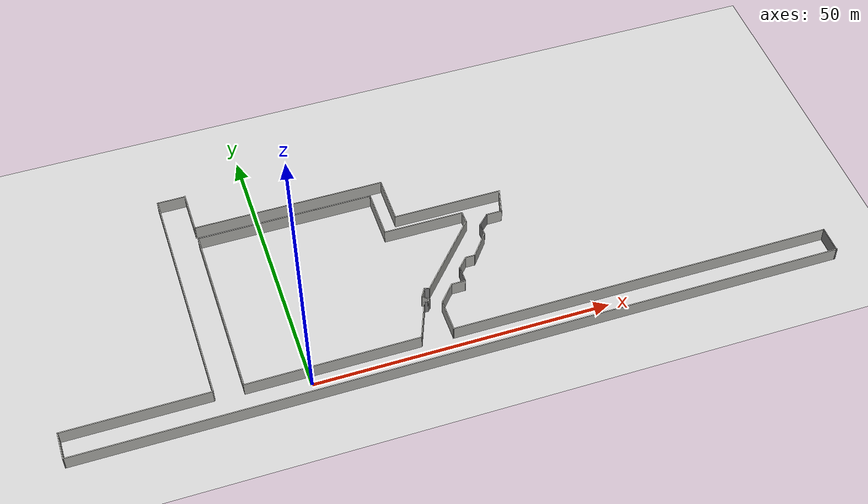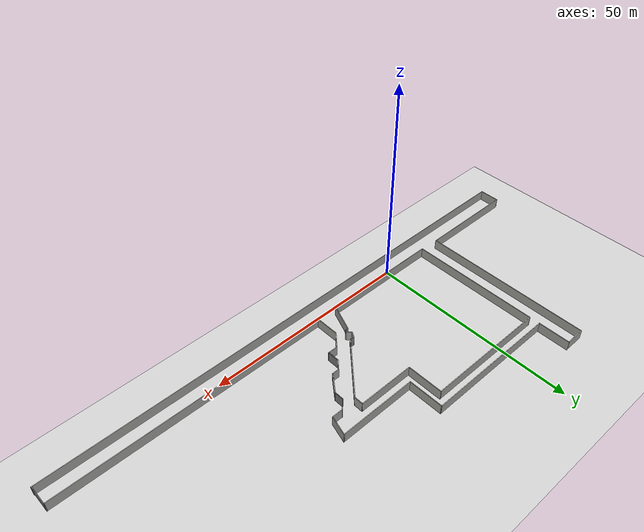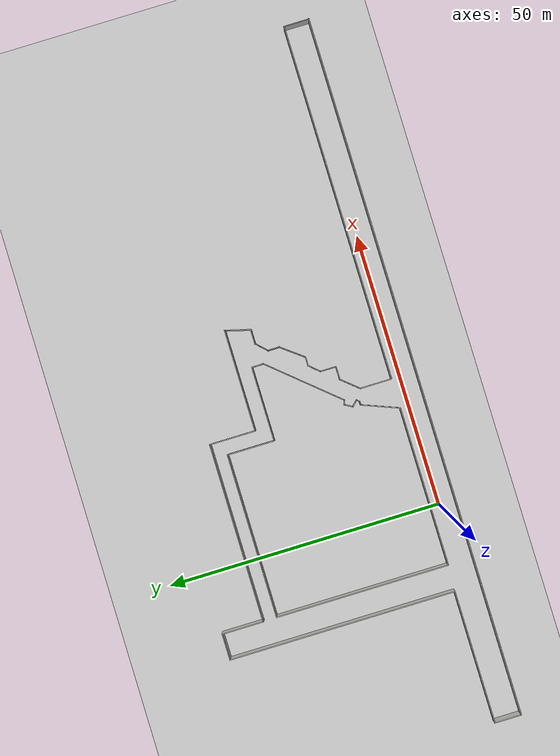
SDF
<?xml version="1.0"?>
<sdf version="1.4">
<world name="mit_tunnel">

  <include>
    <uri>model://sun</uri>
  </include>

  <gui>
    <camera name='main'>
      <pose>0 0 10 0 1.571 0</pose>
    </camera>
  </gui>

  <model name="ground_plane">
    <static>true</static>
    <link name="link">
      <collision name="collision">
        <geometry>
          <plane>
            <normal>0 0 1</normal>
            <size>150 150</size>
          </plane>
        </geometry>
        <surface>
          <friction>
            <ode>
              <mu>100</mu>
              <mu2>50</mu2>
            </ode>
          </friction>
        </surface>
      </collision>
      <visual name="visual">
        <cast_shadows>false</cast_shadows>
        <geometry>
          <plane>
            <normal>0 0 1</normal>
            <size>150 150</size>
          </plane>
        </geometry>
        <material>
          <script>
            <uri>file://media/materials/scripts/gazebo.material</uri>
            <name>Gazebo/Grey</name>
          </script>
        </material>
      </visual>
    </link>
  </model>

  <include>
    <uri>model://mit_tunnel</uri>
    <pose>25 20.2 0 0 0 0</pose>
  </include>

</world>
</sdf>

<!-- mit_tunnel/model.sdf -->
<sdf version='1.4'>
  <model name='mit_tunnel'>
    <pose frame=''>3.61177 6.74312 0 0 -0 0</pose>
    <link name='Wall_10'>
      <collision name='Wall_10_Collision'>
        <geometry>
          <box>
            <size>32.6917 0.15 2.5</size>
          </box>
        </geometry>
        <pose frame=''>0 0 1.25 0 -0 0</pose>
      </collision>
      <visual name='Wall_10_Visual'>
        <pose frame=''>0 0 1.25 0 -0 0</pose>
        <geometry>
          <box>
            <size>32.6917 0.15 2.5</size>
          </box>
        </geometry>
        <material>
          <script>
            <uri>file://media/materials/scripts/gazebo.material</uri>
            <name>Gazebo/CeilingTiled</name>
          </script>
          <ambient>1 1 1 1</ambient>
        </material>
      </visual>
      <pose frame=''>-19.1952 15.5558 0 0 0 -0.001042</pose>
    </link>
    <link name='Wall_12'>
      <collision name='Wall_12_Collision'>
        <geometry>
          <box>
            <size>8.5 0.15 2.5</size>
          </box>
        </geometry>
        <pose frame=''>0 0 1.25 0 -0 0</pose>
      </collision>
      <visual name='Wall_12_Visual'>
        <pose frame=''>0 0 1.25 0 -0 0</pose>
        <geometry>
          <box>
            <size>8.5 0.15 2.5</size>
          </box>
        </geometry>
        <material>
          <script>
            <uri>file://media/materials/scripts/gazebo.material</uri>
            <name>Gazebo/CeilingTiled</name>
          </script>
          <ambient>1 1 1 1</ambient>
        </material>
      </visual>
      <pose frame=''>-2.92483 11.3639 0 0 0 -1.5708</pose>
    </link>
    <link name='Wall_15'>
      <collision name='Wall_15_Collision'>
        <geometry>
          <box>
            <size>18.75 0.15 2.5</size>
          </box>
        </geometry>
        <pose frame=''>0 0 1.25 0 -0 0</pose>
      </collision>
      <visual name='Wall_15_Visual'>
        <pose frame=''>0 0 1.25 0 -0 0</pose>
        <geometry>
          <box>
            <size>18.75 0.15 2.5</size>
          </box>
        </geometry>
        <material>
          <script>
            <uri>file://media/materials/scripts/gazebo.material</uri>
            <name>Gazebo/CeilingTiled</name>
          </script>
          <ambient>1 1 1 1</ambient>
        </material>
      </visual>
      <pose frame=''>6.37517 7.18889 0 0 -0 0</pose>
    </link>
    <link name='Wall_17'>
      <collision name='Wall_17_Collision'>
        <geometry>
          <box>
            <size>4.75 0.15 2.5</size>
          </box>
        </geometry>
        <pose frame=''>0 0 1.25 0 -0 0</pose>
      </collision>
      <visual name='Wall_17_Visual'>
        <pose frame=''>0 0 1.25 0 -0 0</pose>
        <geometry>
          <box>
            <size>4.75 0.15 2.5</size>
          </box>
        </geometry>
        <material>
          <script>
            <uri>file://media/materials/scripts/gazebo.material</uri>
            <name>Gazebo/CeilingTiled</name>
          </script>
          <ambient>1 1 1 1</ambient>
        </material>
      </visual>
      <pose frame=''>15.0799 4.96726 0 0 0 -1.8326</pose>
    </link>
    <link name='Wall_18'>
      <collision name='Wall_18_Collision'>
        <geometry>
          <box>
            <size>2.75 0.15 2.5</size>
          </box>
        </geometry>
        <pose frame=''>0 0 1.25 0 -0 0</pose>
      </collision>
      <visual name='Wall_18_Visual'>
        <pose frame=''>0 0 1.25 0 -0 0</pose>
        <geometry>
          <box>
            <size>2.75 0.15 2.5</size>
          </box>
        </geometry>
        <material>
          <script>
            <uri>file://media/materials/scripts/gazebo.material</uri>
            <name>Gazebo/CeilingTiled</name>
          </script>
          <ambient>1 1 1 1</ambient>
        </material>
      </visual>
      <pose frame=''>13.1846 2.74563 0 0 -0 3.14159</pose>
    </link>
    <link name='Wall_19'>
      <collision name='Wall_19_Collision'>
        <geometry>
          <box>
            <size>2.75 0.15 2.5</size>
          </box>
        </geometry>
        <pose frame=''>0 0 1.25 0 -0 0</pose>
      </collision>
      <visual name='Wall_19_Visual'>
        <pose frame=''>0 0 1.25 0 -0 0</pose>
        <geometry>
          <box>
            <size>2.75 0.15 2.5</size>
          </box>
        </geometry>
        <material>
          <script>
            <uri>file://media/materials/scripts/gazebo.material</uri>
            <name>Gazebo/Grey</name>
          </script>
          <ambient>1 1 1 1</ambient>
        </material>
      </visual>
      <pose frame=''>10.9654 1.82639 0 0 0 -2.35619</pose>
    </link>
    <link name='Wall_2'>
      <collision name='Wall_2_Collision'>
        <geometry>
          <box>
            <size>24.25 0.15 2.5</size>
          </box>
        </geometry>
        <pose frame=''>0 0 1.25 0 -0 0</pose>
      </collision>
      <visual name='Wall_2_Visual'>
        <pose frame=''>0 0 1.25 0 -0 0</pose>
        <geometry>
          <box>
            <size>24.25 0.15 2.5</size>
          </box>
        </geometry>
        <material>
          <script>
            <uri>file://media/materials/scripts/gazebo.material</uri>
            <name>Gazebo/CeilingTiled</name>
          </script>
          <ambient>1 1 1 1</ambient>
        </material>
      </visual>
      <pose frame=''>-52.25 -18.2689 0 0 -0 0</pose>
    </link>
    <link name='Wall_20'>
      <collision name='Wall_20_Collision'>
        <geometry>
          <box>
            <size>2.25 0.15 2.5</size>
          </box>
        </geometry>
        <pose frame=''>0 0 1.25 0 -0 0</pose>
      </collision>
      <visual name='Wall_20_Visual'>
        <pose frame=''>0 0 1.25 0 -0 0</pose>
        <geometry>
          <box>
            <size>2.25 0.15 2.5</size>
          </box>
        </geometry>
        <material>
          <script>
            <uri>file://media/materials/scripts/gazebo.material</uri>
            <name>Gazebo/Grey</name>
          </script>
          <ambient>1 1 1 1</ambient>
        </material>
      </visual>
      <pose frame=''>10.0461 -0.142849 0 0 0 -1.5708</pose>
    </link>
    <link name='Wall_22'>
      <collision name='Wall_22_Collision'>
        <geometry>
          <box>
            <size>5.08891 0.15 2.5</size>
          </box>
        </geometry>
        <pose frame=''>0 0 1.25 0 -0 0</pose>
      </collision>
      <visual name='Wall_22_Visual'>
        <pose frame=''>0 0 1.25 0 -0 0</pose>
        <geometry>
          <box>
            <size>5.08891 0.15 2.5</size>
          </box>
        </geometry>
        <material>
          <script>
            <uri>file://media/materials/scripts/gazebo.material</uri>
            <name>Gazebo/CeilingTiled</name>
          </script>
          <ambient>1 1 1 1</ambient>
        </material>
      </visual>
      <pose frame=''>8.53852 -3.14869 0 0 0 -2.22749</pose>
    </link>
    <link name='Wall_23'>
      <collision name='Wall_23_Collision'>
        <geometry>
          <box>
            <size>1.75 0.15 2.5</size>
          </box>
        </geometry>
        <pose frame=''>0 0 1.25 0 -0 0</pose>
      </collision>
      <visual name='Wall_23_Visual'>
        <pose frame=''>0 0 1.25 0 -0 0</pose>
        <geometry>
          <box>
            <size>1.75 0.15 2.5</size>
          </box>
        </geometry>
        <material>
          <script>
            <uri>file://media/materials/scripts/gazebo.material</uri>
            <name>Gazebo/CeilingTiled</name>
          </script>
          <ambient>1 1 1 1</ambient>
        </material>
      </visual>
      <pose frame=''>6.23091 -5.10454 0 0 -0 3.14159</pose>
    </link>
    <link name='Wall_24'>
      <collision name='Wall_24_Collision'>
        <geometry>
          <box>
            <size>2.59216 0.15 2.5</size>
          </box>
        </geometry>
        <pose frame=''>0 0 1.25 0 -0 0</pose>
      </collision>
      <visual name='Wall_24_Visual'>
        <pose frame=''>0 0 1.25 0 -0 0</pose>
        <geometry>
          <box>
            <size>2.59216 0.15 2.5</size>
          </box>
        </geometry>
        <material>
          <script>
            <uri>file://media/materials/scripts/gazebo.material</uri>
            <name>Gazebo/CeilingTiled</name>
          </script>
          <ambient>1 1 1 1</ambient>
        </material>
      </visual>
      <pose frame=''>4.6163 -6.01417 0 0 0 -2.30114</pose>
    </link>
    <link name='Wall_26'>
      <collision name='Wall_26_Collision'>
        <geometry>
          <box>
            <size>3 0.15 2.5</size>
          </box>
        </geometry>
        <pose frame=''>0 0 1.25 0 -0 0</pose>
      </collision>
      <visual name='Wall_26_Visual'>
        <pose frame=''>0 0 1.25 0 -0 0</pose>
        <geometry>
          <box>
            <size>3 0.15 2.5</size>
          </box>
        </geometry>
        <material>
          <script>
            <uri>file://media/materials/scripts/gazebo.material</uri>
            <name>Gazebo/Grey</name>
          </script>
          <ambient>1 1 1 1</ambient>
        </material>
      </visual>
      <pose frame=''>3.80168 -8.34882 0 0 0 -1.5708</pose>
    </link>
    <link name='Wall_27'>
      <collision name='Wall_27_Collision'>
        <geometry>
          <box>
            <size>2.5 0.15 2.5</size>
          </box>
        </geometry>
        <pose frame=''>0 0 1.25 0 -0 0</pose>
      </collision>
      <visual name='Wall_27_Visual'>
        <pose frame=''>0 0 1.25 0 -0 0</pose>
        <geometry>
          <box>
            <size>2.5 0.15 2.5</size>
          </box>
        </geometry>
        <material>
          <script>
            <uri>file://media/materials/scripts/gazebo.material</uri>
            <name>Gazebo/CeilingTiled</name>
          </script>
          <ambient>1 1 1 1</ambient>
        </material>
      </visual>
      <pose frame=''>2.62668 -9.77382 0 0 -0 3.14159</pose>
    </link>
    <link name='Wall_28'>
      <collision name='Wall_28_Collision'>
        <geometry>
          <box>
            <size>4.15096 0.15 2.5</size>
          </box>
        </geometry>
        <pose frame=''>0 0 1.25 0 -0 0</pose>
      </collision>
      <visual name='Wall_28_Visual'>
        <pose frame=''>0 0 1.25 0 -0 0</pose>
        <geometry>
          <box>
            <size>4.15096 0.15 2.5</size>
          </box>
        </geometry>
        <material>
          <script>
            <uri>file://media/materials/scripts/gazebo.material</uri>
            <name>Gazebo/CeilingTiled</name>
          </script>
          <ambient>1 1 1 1</ambient>
        </material>
      </visual>
      <pose frame=''>0.152007 -11.2946 0 0 0 -2.27796</pose>
    </link>
    <link name='Wall_29'>
      <collision name='Wall_29_Collision'>
        <geometry>
          <box>
            <size>5.87777 0.15 2.5</size>
          </box>
        </geometry>
        <pose frame=''>0 0 1.25 0 -0 0</pose>
      </collision>
      <visual name='Wall_29_Visual'>
        <pose frame=''>0 0 1.25 0 -0 0</pose>
        <geometry>
          <box>
            <size>5.87777 0.15 2.5</size>
          </box>
        </geometry>
        <material>
          <script>
            <uri>file://media/materials/scripts/gazebo.material</uri>
            <name>Gazebo/CeilingTiled</name>
          </script>
          <ambient>1 1 1 1</ambient>
        </material>
      </visual>
      <pose frame=''>-1.14312 -15.679 0 0 0 -1.56921</pose>
    </link>
    <link name='Wall_30'>
      <collision name='Wall_30_Collision'>
        <geometry>
          <box>
            <size>65.5 0.15 2.5</size>
          </box>
        </geometry>
        <pose frame=''>0 0 1.25 0 -0 0</pose>
      </collision>
      <visual name='Wall_30_Visual'>
        <pose frame=''>0 0 1.25 0 -0 0</pose>
        <geometry>
          <box>
            <size>65.5 0.15 2.5</size>
          </box>
        </geometry>
        <material>
          <script>
            <uri>file://media/materials/scripts/gazebo.material</uri>
            <name>Gazebo/CeilingTiled</name>
          </script>
          <ambient>1 1 1 1</ambient>
        </material>
      </visual>
      <pose frame=''>31.5103 -18.5427 0 0 -0 0</pose>
    </link>
    <link name='Wall_32'>
      <collision name='Wall_32_Collision'>
        <geometry>
          <box>
            <size>4.75 0.15 2.5</size>
          </box>
        </geometry>
        <pose frame=''>0 0 1.25 0 -0 0</pose>
      </collision>
      <visual name='Wall_32_Visual'>
        <pose frame=''>0 0 1.25 0 -0 0</pose>
        <geometry>
          <box>
            <size>4.75 0.15 2.5</size>
          </box>
        </geometry>
        <material>
          <script>
            <uri>file://media/materials/scripts/gazebo.material</uri>
            <name>Gazebo/Grey</name>
          </script>
          <ambient>1 1 1 1</ambient>
        </material>
      </visual>
      <pose frame=''>64.1853 -20.8427 0 0 0 -1.5708</pose>
    </link>
    <link name='Wall_34'>
      <collision name='Wall_34_Collision'>
        <geometry>
          <box>
            <size>5 0.15 2.5</size>
          </box>
        </geometry>
        <pose frame=''>0 0 1.25 0 -0 0</pose>
      </collision>
      <visual name='Wall_34_Visual'>
        <pose frame=''>0 0 1.25 0 -0 0</pose>
        <geometry>
          <box>
            <size>5 0.15 2.5</size>
          </box>
        </geometry>
        <material>
          <script>
            <uri>file://media/materials/scripts/gazebo.material</uri>
            <name>Gazebo/CeilingTiled</name>
          </script>
          <ambient>1 1 1 1</ambient>
        </material>
      </visual>
      <pose frame=''>-64.3 -20.6939 0 0 0 -1.5708</pose>
    </link>
    <link name='Wall_35'>
      <collision name='Wall_35_Collision'>
        <geometry>
          <box>
            <size>128.75 0.15 2.5</size>
          </box>
        </geometry>
        <pose frame=''>0 0 1.25 0 -0 0</pose>
      </collision>
      <visual name='Wall_35_Visual'>
        <pose frame=''>0 0 1.25 0 -0 0</pose>
        <geometry>
          <box>
            <size>128.75 0.15 2.5</size>
          </box>
        </geometry>
        <material>
          <script>
            <uri>file://media/materials/scripts/gazebo.material</uri>
            <name>Gazebo/CeilingTiled</name>
          </script>
          <ambient>1 1 1 1</ambient>
        </material>
      </visual>
      <pose frame=''>1e-06 -23.1189 0 0 -0 0</pose>
    </link>
    <link name='Wall_37'>
      <collision name='Wall_37_Collision'>
        <geometry>
          <box>
            <size>4.75 0.15 2.5</size>
          </box>
        </geometry>
        <pose frame=''>0 0 1.25 0 -0 0</pose>
      </collision>
      <visual name='Wall_37_Visual'>
        <pose frame=''>0 0 1.25 0 -0 0</pose>
        <geometry>
          <box>
            <size>4.75 0.15 2.5</size>
          </box>
        </geometry>
        <material>
          <script>
            <uri>file://media/materials/scripts/gazebo.material</uri>
            <name>Gazebo/CeilingTiled</name>
          </script>
          <ambient>1 1 1 1</ambient>
        </material>
      </visual>
      <pose frame=''>-37.9 23.0811 0 0 -0 0</pose>
    </link>
    <link name='Wall_41'>
      <collision name='Wall_41_Collision'>
        <geometry>
          <box>
            <size>31.75 0.15 2.5</size>
          </box>
        </geometry>
        <pose frame=''>0 0 1.25 0 -0 0</pose>
      </collision>
      <visual name='Wall_41_Visual'>
        <pose frame=''>0 0 1.25 0 -0 0</pose>
        <geometry>
          <box>
            <size>31.75 0.15 2.5</size>
          </box>
        </geometry>
        <material>
          <script>
            <uri>file://media/materials/scripts/gazebo.material</uri>
            <name>Gazebo/CeilingTiled</name>
          </script>
          <ambient>1 1 1 1</ambient>
        </material>
      </visual>
      <pose frame=''>-35.4175 -2.72616 0 0 -0 1.5708</pose>
    </link>
    <link name='Wall_43'>
      <collision name='Wall_43_Collision'>
        <geometry>
          <box>
            <size>30 0.15 2.5</size>
          </box>
        </geometry>
        <pose frame=''>0 0 1.25 0 -0 0</pose>
      </collision>
      <visual name='Wall_43_Visual'>
        <pose frame=''>0 0 1.25 0 -0 0</pose>
        <geometry>
          <box>
            <size>30 0.15 2.5</size>
          </box>
        </geometry>
        <material>
          <script>
            <uri>file://media/materials/scripts/gazebo.material</uri>
            <name>Gazebo/CeilingTiled</name>
          </script>
          <ambient>1 1 1 1</ambient>
        </material>
      </visual>
      <pose frame=''>-20.4925 13.0738 0 0 -0 0</pose>
    </link>
    <link name='Wall_44'>
      <collision name='Wall_44_Collision'>
        <geometry>
          <box>
            <size>8.75 0.15 2.5</size>
          </box>
        </geometry>
        <pose frame=''>0 0 1.25 0 -0 0</pose>
      </collision>
      <visual name='Wall_44_Visual'>
        <pose frame=''>0 0 1.25 0 -0 0</pose>
        <geometry>
          <box>
            <size>8.75 0.15 2.5</size>
          </box>
        </geometry>
        <material>
          <script>
            <uri>file://media/materials/scripts/gazebo.material</uri>
            <name>Gazebo/CeilingTiled</name>
          </script>
          <ambient>1 1 1 1</ambient>
        </material>
      </visual>
      <pose frame=''>-5.56745 8.77384 0 0 0 -1.5708</pose>
    </link>
    <link name='Wall_45'>
      <collision name='Wall_45_Collision'>
        <geometry>
          <box>
            <size>13.75 0.15 2.5</size>
          </box>
        </geometry>
        <pose frame=''>0 0 1.25 0 -0 0</pose>
      </collision>
      <visual name='Wall_45_Visual'>
        <pose frame=''>0 0 1.25 0 -0 0</pose>
        <geometry>
          <box>
            <size>13.75 0.15 2.5</size>
          </box>
        </geometry>
        <material>
          <script>
            <uri>file://media/materials/scripts/gazebo.material</uri>
            <name>Gazebo/CeilingTiled</name>
          </script>
          <ambient>1 1 1 1</ambient>
        </material>
      </visual>
      <pose frame=''>1.23255 4.47384 0 0 -0 0</pose>
    </link>
    <link name='Wall_46'>
      <collision name='Wall_46_Collision'>
        <geometry>
          <box>
            <size>2.25 0.15 2.5</size>
          </box>
        </geometry>
        <pose frame=''>0 0 1.25 0 -0 0</pose>
      </collision>
      <visual name='Wall_46_Visual'>
        <pose frame=''>0 0 1.25 0 -0 0</pose>
        <geometry>
          <box>
            <size>2.25 0.15 2.5</size>
          </box>
        </geometry>
        <material>
          <script>
            <uri>file://media/materials/scripts/gazebo.material</uri>
            <name>Gazebo/CeilingTiled</name>
          </script>
          <ambient>1 1 1 1</ambient>
        </material>
      </visual>
      <pose frame=''>8.03255 3.42384 0 0 0 -1.5708</pose>
    </link>
    <link name='Wall_47'>
      <collision name='Wall_47_Collision'>
        <geometry>
          <box>
            <size>15.8243 0.15 2.5</size>
          </box>
        </geometry>
        <pose frame=''>0 0 1.25 0 -0 0</pose>
      </collision>
      <visual name='Wall_47_Visual'>
        <pose frame=''>0 0 1.25 0 -0 0</pose>
        <geometry>
          <box>
            <size>15.8243 0.15 2.5</size>
          </box>
        </geometry>
        <material>
          <script>
            <uri>file://media/materials/scripts/gazebo.material</uri>
            <name>Gazebo/CeilingTiled</name>
          </script>
          <ambient>1 1 1 1</ambient>
        </material>
      </visual>
      <pose frame=''>2.89068 -3.54071 0 0 0 -2.28642</pose>
    </link>
    <link name='Wall_5'>
      <collision name='Wall_5_Collision'>
        <geometry>
          <box>
            <size>41.5 0.15 2.5</size>
          </box>
        </geometry>
        <pose frame=''>0 0 1.25 0 -0 0</pose>
      </collision>
      <visual name='Wall_5_Visual'>
        <pose frame=''>0 0 1.25 0 -0 0</pose>
        <geometry>
          <box>
            <size>41.5 0.15 2.5</size>
          </box>
        </geometry>
        <material>
          <script>
            <uri>file://media/materials/scripts/gazebo.material</uri>
            <name>Gazebo/CeilingTiled</name>
          </script>
          <ambient>1 1 1 1</ambient>
        </material>
      </visual>
      <pose frame=''>-40.2 2.40609 0 0 -0 1.5708</pose>
    </link>
    <link name='Wall_50'>
      <collision name='Wall_50_Collision'>
        <geometry>
          <box>
            <size>1 0.15 2.5</size>
          </box>
        </geometry>
        <pose frame=''>0 0 1.25 0 -0 0</pose>
      </collision>
      <visual name='Wall_50_Visual'>
        <pose frame=''>0 0 1.25 0 -0 0</pose>
        <geometry>
          <box>
            <size>1 0.15 2.5</size>
          </box>
        </geometry>
        <material>
          <script>
            <uri>file://media/materials/scripts/gazebo.material</uri>
            <name>Gazebo/Grey</name>
          </script>
          <ambient>1 1 1 1</ambient>
        </material>
      </visual>
      <pose frame=''>-2.6617 -9.34526 0 0 -0 2.87979</pose>
    </link>
    <link name='Wall_51'>
      <collision name='Wall_51_Collision'>
        <geometry>
          <box>
            <size>1.75 0.15 2.5</size>
          </box>
        </geometry>
        <pose frame=''>0 0 1.25 0 -0 0</pose>
      </collision>
      <visual name='Wall_51_Visual'>
        <pose frame=''>0 0 1.25 0 -0 0</pose>
        <geometry>
          <box>
            <size>1.75 0.15 2.5</size>
          </box>
        </geometry>
        <material>
          <script>
            <uri>file://media/materials/scripts/gazebo.material</uri>
            <name>Gazebo/CeilingTiled</name>
          </script>
          <ambient>1 1 1 1</ambient>
        </material>
      </visual>
      <pose frame=''>-3.47221 -9.92808 0 0 0 -2.0944</pose>
    </link>
    <link name='Wall_52'>
      <collision name='Wall_52_Collision'>
        <geometry>
          <box>
            <size>1.5 0.15 2.5</size>
          </box>
        </geometry>
        <pose frame=''>0 0 1.25 0 -0 0</pose>
      </collision>
      <visual name='Wall_52_Visual'>
        <pose frame=''>0 0 1.25 0 -0 0</pose>
        <geometry>
          <box>
            <size>1.5 0.15 2.5</size>
          </box>
        </geometry>
        <material>
          <script>
            <uri>file://media/materials/scripts/gazebo.material</uri>
            <name>Gazebo/CeilingTiled</name>
          </script>
          <ambient>1 1 1 1</ambient>
        </material>
      </visual>
      <pose frame=''>-3.39492 -11.0982 0 0 0 -0.785398</pose>
    </link>
    <link name='Wall_53'>
      <collision name='Wall_53_Collision'>
        <geometry>
          <box>
            <size>0.75 0.15 2.5</size>
          </box>
        </geometry>
        <pose frame=''>0 0 1.25 0 -0 0</pose>
      </collision>
      <visual name='Wall_53_Visual'>
        <pose frame=''>0 0 1.25 0 -0 0</pose>
        <geometry>
          <box>
            <size>0.75 0.15 2.5</size>
          </box>
        </geometry>
        <material>
          <script>
            <uri>file://media/materials/scripts/gazebo.material</uri>
            <name>Gazebo/CeilingTiled</name>
          </script>
          <ambient>1 1 1 1</ambient>
        </material>
      </visual>
      <pose frame=''>-3.12975 -11.7876 0 0 0 -2.35619</pose>
    </link>
    <link name='Wall_54'>
      <collision name='Wall_54_Collision'>
        <geometry>
          <box>
            <size>0.75 0.15 2.5</size>
          </box>
        </geometry>
        <pose frame=''>0 0 1.25 0 -0 0</pose>
      </collision>
      <visual name='Wall_54_Visual'>
        <pose frame=''>0 0 1.25 0 -0 0</pose>
        <geometry>
          <box>
            <size>0.75 0.15 2.5</size>
          </box>
        </geometry>
        <material>
          <script>
            <uri>file://media/materials/scripts/gazebo.material</uri>
            <name>Gazebo/Grey</name>
          </script>
          <ambient>1 1 1 1</ambient>
        </material>
      </visual>
      <pose frame=''>-3.64188 -11.9998 0 0 -0 3.14159</pose>
    </link>
    <link name='Wall_55'>
      <collision name='Wall_55_Collision'>
        <geometry>
          <box>
            <size>7.13355 0.15 2.5</size>
          </box>
        </geometry>
        <pose frame=''>0 0 1.25 0 -0 0</pose>
      </collision>
      <visual name='Wall_55_Visual'>
        <pose frame=''>0 0 1.25 0 -0 0</pose>
        <geometry>
          <box>
            <size>7.13355 0.15 2.5</size>
          </box>
        </geometry>
        <material>
          <script>
            <uri>file://media/materials/scripts/gazebo.material</uri>
            <name>Gazebo/CeilingTiled</name>
          </script>
          <ambient>1 1 1 1</ambient>
        </material>
      </visual>
      <pose frame=''>-5.21192 -15.2524 0 0 0 -1.94306</pose>
    </link>
    <link name='Wall_57'>
      <collision name='Wall_57_Collision'>
        <geometry>
          <box>
            <size>29 0.15 2.5</size>
          </box>
        </geometry>
        <pose frame=''>0 0 1.25 0 -0 0</pose>
      </collision>
      <visual name='Wall_57_Visual'>
        <pose frame=''>0 0 1.25 0 -0 0</pose>
        <geometry>
          <box>
            <size>29 0.15 2.5</size>
          </box>
        </geometry>
        <material>
          <script>
            <uri>file://media/materials/scripts/gazebo.material</uri>
            <name>Gazebo/CeilingTiled</name>
          </script>
          <ambient>1 1 1 1</ambient>
        </material>
      </visual>
      <pose frame=''>-20.9925 -18.5262 0 0 -0 0</pose>
    </link>
    <link name='Wall_9'>
      <collision name='Wall_9_Collision'>
        <geometry>
          <box>
            <size>7.75 0.15 2.5</size>
          </box>
        </geometry>
        <pose frame=''>0 0 1.25 0 -0 0</pose>
      </collision>
      <visual name='Wall_9_Visual'>
        <pose frame=''>0 0 1.25 0 -0 0</pose>
        <geometry>
          <box>
            <size>7.75 0.15 2.5</size>
          </box>
        </geometry>
        <material>
          <script>
            <uri>file://media/materials/scripts/gazebo.material</uri>
            <name>Gazebo/CeilingTiled</name>
          </script>
          <ambient>1 1 1 1</ambient>
        </material>
      </visual>
      <pose frame=''>-35.4657 19.3427 0 0 0 -1.5708</pose>
    </link>
    <static>1</static>
  </model>
</sdf>
